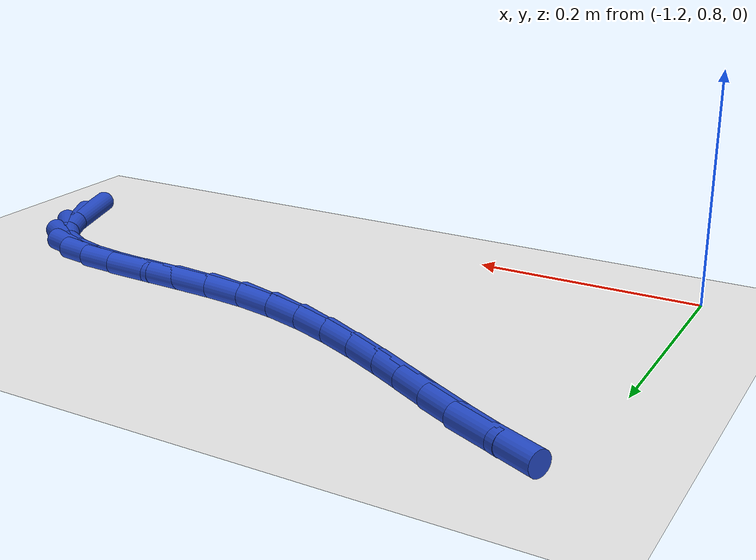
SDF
<sdf version="1.6">
 <world name="default">
  <model name="ground_plane">
   <static>1</static>
   <link name="link">
    <collision name="collision">
     <geometry><plane><normal>0 0 1</normal><size>100 100</size></plane></geometry>
     <surface><friction><ode><mu>100</mu><mu2>50</mu2></ode></friction></surface>
    </collision>
    <visual name="visual">
     <cast_shadows>0</cast_shadows>
     <geometry><plane><normal>0 0 1</normal><size>100 100</size></plane></geometry>
     <material>
      <script><uri>file://media/materials/scripts/gazebo.material</uri><name>Gazebo/WhiteGlow</name></script>
     </material>
    </visual>
   </link>
  </model>
  <model name="line">
   <link name="link_37">
    <pose>-0.6010068340014202 0.8831455634674006 0.01 0 1.57 -1.2432682338137393</pose>
    <collision name="collision">
     <geometry><cylinder><radius>0.01</radius><length>0.08</length></cylinder></geometry>
    </collision>
    <visual name="visual">
     <material>
      <script><name>Gazebo/Blue</name><uri>file://media/materials/scripts/gazebo.material</uri></script>
     </material>
     <geometry><cylinder><radius>0.01</radius><length>0.08</length></cylinder></geometry>
    </visual>
   </link>
   <link name="link_38">
    <pose>-0.6116788769983862 0.9145556093188728 0.01 0 1.57 -1.0859640327717612</pose>
    <collision name="collision">
     <geometry><cylinder><radius>0.01</radius><length>0.08</length></cylinder></geometry>
    </collision>
    <visual name="visual">
     <material>
      <script><name>Gazebo/Blue</name><uri>file://media/materials/scripts/gazebo.material</uri></script>
     </material>
     <geometry><cylinder><radius>0.01</radius><length>0.08</length></cylinder></geometry>
    </visual>
   </link>
   <link name="link_39">
    <pose>-0.6257600507461603 0.9412868515927771 0.01 0 1.57 -0.8007553766479872</pose>
    <collision name="collision">
     <geometry><cylinder><radius>0.01</radius><length>0.08</length></cylinder></geometry>
    </collision>
    <visual name="visual">
     <material>
      <script><name>Gazebo/Blue</name><uri>file://media/materials/scripts/gazebo.material</uri></script>
     </material>
     <geometry><cylinder><radius>0.01</radius><length>0.08</length></cylinder></geometry>
    </visual>
   </link>
   <link name="link_40">
    <pose>-0.6449202774188946 0.9610447999694989 0.01 0 1.57 -0.5036832757157778</pose>
    <collision name="collision">
     <geometry><cylinder><radius>0.01</radius><length>0.08</length></cylinder></geometry>
    </collision>
    <visual name="visual">
     <material>
      <script><name>Gazebo/Blue</name><uri>file://media/materials/scripts/gazebo.material</uri></script>
     </material>
     <geometry><cylinder><radius>0.01</radius><length>0.08</length></cylinder></geometry>
    </visual>
   </link>
   <link name="link_41">
    <pose>-0.6689635727987997 0.9742949323937989 0.01 0 1.57 -0.28218743088363357</pose>
    <collision name="collision">
     <geometry><cylinder><radius>0.01</radius><length>0.08</length></cylinder></geometry>
    </collision>
    <visual name="visual">
     <material>
      <script><name>Gazebo/Blue</name><uri>file://media/materials/scripts/gazebo.material</uri></script>
     </material>
     <geometry><cylinder><radius>0.01</radius><length>0.08</length></cylinder></geometry>
    </visual>
   </link>
   <link name="link_42">
    <pose>-0.6970598178792926 0.9824407116418101 0.01 0 1.57 -0.14100774028335877</pose>
    <collision name="collision">
     <geometry><cylinder><radius>0.01</radius><length>0.08</length></cylinder></geometry>
    </collision>
    <visual name="visual">
     <material>
      <script><name>Gazebo/Blue</name><uri>file://media/materials/scripts/gazebo.material</uri></script>
     </material>
     <geometry><cylinder><radius>0.01</radius><length>0.08</length></cylinder></geometry>
    </visual>
   </link>
   <link name="link_43">
    <pose>-0.7283783708529197 0.986886373794168 0.01 0 1.57 -0.06368614505187006</pose>
    <collision name="collision">
     <geometry><cylinder><radius>0.01</radius><length>0.08</length></cylinder></geometry>
    </collision>
    <visual name="visual">
     <material>
      <script><name>Gazebo/Blue</name><uri>file://media/materials/scripts/gazebo.material</uri></script>
     </material>
     <geometry><cylinder><radius>0.01</radius><length>0.08</length></cylinder></geometry>
    </visual>
   </link>
   <link name="link_44">
    <pose>-0.7620885899122277 0.9890361549315072 0.01 0 1.57 -0.03565519345476884</pose>
    <collision name="collision">
     <geometry><cylinder><radius>0.01</radius><length>0.08</length></cylinder></geometry>
    </collision>
    <visual name="visual">
     <material>
      <script><name>Gazebo/Blue</name><uri>file://media/materials/scripts/gazebo.material</uri></script>
     </material>
     <geometry><cylinder><radius>0.01</radius><length>0.08</length></cylinder></geometry>
    </visual>
   </link>
   <link name="link_45">
    <pose>-0.7973598332497623 0.9902942911344629 0.01 0 1.57 -0.04914504568508335</pose>
    <collision name="collision">
     <geometry><cylinder><radius>0.01</radius><length>0.08</length></cylinder></geometry>
    </collision>
    <visual name="visual">
     <material>
      <script><name>Gazebo/Blue</name><uri>file://media/materials/scripts/gazebo.material</uri></script>
     </material>
     <geometry><cylinder><radius>0.01</radius><length>0.08</length></cylinder></geometry>
    </visual>
   </link>
   <link name="link_46">
    <pose>-0.8333614590580708 0.9920650184836695 0.01 0 1.57 -0.1023545462651596</pose>
    <collision name="collision">
     <geometry><cylinder><radius>0.01</radius><length>0.08</length></cylinder></geometry>
    </collision>
    <visual name="visual">
     <material>
      <script><name>Gazebo/Blue</name><uri>file://media/materials/scripts/gazebo.material</uri></script>
     </material>
     <geometry><cylinder><radius>0.01</radius><length>0.08</length></cylinder></geometry>
    </visual>
   </link>
   <link name="link_47">
    <pose>-0.8692628255296989 0.9957525730597627 0.01 0 1.57 -0.19440847672262934</pose>
    <collision name="collision">
     <geometry><cylinder><radius>0.01</radius><length>0.08</length></cylinder></geometry>
    </collision>
    <visual name="visual">
     <material>
      <script><name>Gazebo/Blue</name><uri>file://media/materials/scripts/gazebo.material</uri></script>
     </material>
     <geometry><cylinder><radius>0.01</radius><length>0.08</length></cylinder></geometry>
    </visual>
   </link>
   <link name="link_48">
    <pose>-0.9042827495395587 1.002647830772634 0.01 0 1.57 -0.29183007982551934</pose>
    <collision name="collision">
     <geometry><cylinder><radius>0.01</radius><length>0.08</length></cylinder></geometry>
    </collision>
    <visual name="visual">
     <material>
      <script><name>Gazebo/Blue</name><uri>file://media/materials/scripts/gazebo.material</uri></script>
     </material>
     <geometry><cylinder><radius>0.01</radius><length>0.08</length></cylinder></geometry>
    </visual>
   </link>
   <link name="link_49">
    <pose>-0.9381696962677745 1.0128277042917173 0.01 0 1.57 -0.37195045918545055</pose>
    <collision name="collision">
     <geometry><cylinder><radius>0.01</radius><length>0.08</length></cylinder></geometry>
    </collision>
    <visual name="visual">
     <material>
      <script><name>Gazebo/Blue</name><uri>file://media/materials/scripts/gazebo.material</uri></script>
     </material>
     <geometry><cylinder><radius>0.01</radius><length>0.08</length></cylinder></geometry>
    </visual>
   </link>
   <link name="link_50">
    <pose>-0.9709934871204035 1.0256325521588632 0.01 0 1.57 -0.4341356622220557</pose>
    <collision name="collision">
     <geometry><cylinder><radius>0.01</radius><length>0.08</length></cylinder></geometry>
    </collision>
    <visual name="visual">
     <material>
      <script><name>Gazebo/Blue</name><uri>file://media/materials/scripts/gazebo.material</uri></script>
     </material>
     <geometry><cylinder><radius>0.01</radius><length>0.08</length></cylinder></geometry>
    </visual>
   </link>
   <link name="link_51">
    <pose>-1.0028284550648932 1.0403923923377818 0.01 0 1.57 -0.4786584965775184</pose>
    <collision name="collision">
     <geometry><cylinder><radius>0.01</radius><length>0.08</length></cylinder></geometry>
    </collision>
    <visual name="visual">
     <material>
      <script><name>Gazebo/Blue</name><uri>file://media/materials/scripts/gazebo.material</uri></script>
     </material>
     <geometry><cylinder><radius>0.01</radius><length>0.08</length></cylinder></geometry>
    </visual>
   </link>
   <link name="link_52">
    <pose>-1.0337489330686915 1.056437242792184 0.01 0 1.57 -0.5057915339853803</pose>
    <collision name="collision">
     <geometry><cylinder><radius>0.01</radius><length>0.08</length></cylinder></geometry>
    </collision>
    <visual name="visual">
     <material>
      <script><name>Gazebo/Blue</name><uri>file://media/materials/scripts/gazebo.material</uri></script>
     </material>
     <geometry><cylinder><radius>0.01</radius><length>0.08</length></cylinder></geometry>
    </visual>
   </link>
   <link name="link_53">
    <pose>-1.063829254099246 1.0730971214857805 0.01 0 1.57 -0.515377965592126</pose>
    <collision name="collision">
     <geometry><cylinder><radius>0.01</radius><length>0.08</length></cylinder></geometry>
    </collision>
    <visual name="visual">
     <material>
      <script><name>Gazebo/Blue</name><uri>file://media/materials/scripts/gazebo.material</uri></script>
     </material>
     <geometry><cylinder><radius>0.01</radius><length>0.08</length></cylinder></geometry>
    </visual>
   </link>
   <link name="link_54">
    <pose>-1.093143751124005 1.0897020463822822 0.01 0 1.57 -0.5065195005655194</pose>
    <collision name="collision">
     <geometry><cylinder><radius>0.01</radius><length>0.08</length></cylinder></geometry>
    </collision>
    <visual name="visual">
     <material>
      <script><name>Gazebo/Blue</name><uri>file://media/materials/scripts/gazebo.material</uri></script>
     </material>
     <geometry><cylinder><radius>0.01</radius><length>0.08</length></cylinder></geometry>
    </visual>
   </link>
   <link name="link_55">
    <pose>-1.121766757110416 1.1055820354453991 0.01 0 1.57 -0.47732531902921893</pose>
    <collision name="collision">
     <geometry><cylinder><radius>0.01</radius><length>0.08</length></cylinder></geometry>
    </collision>
    <visual name="visual">
     <material>
      <script><name>Gazebo/Blue</name><uri>file://media/materials/scripts/gazebo.material</uri></script>
     </material>
     <geometry><cylinder><radius>0.01</radius><length>0.08</length></cylinder></geometry>
    </visual>
   </link>
   <link name="link_56">
    <pose>-1.1497726050259265 1.1200671066388417 0.01 0 1.57 -0.4247240327282805</pose>
    <collision name="collision">
     <geometry><cylinder><radius>0.01</radius><length>0.08</length></cylinder></geometry>
    </collision>
    <visual name="visual">
     <material>
      <script><name>Gazebo/Blue</name><uri>file://media/materials/scripts/gazebo.material</uri></script>
     </material>
     <geometry><cylinder><radius>0.01</radius><length>0.08</length></cylinder></geometry>
    </visual>
   </link>
  </model>
 </world>
</sdf>
